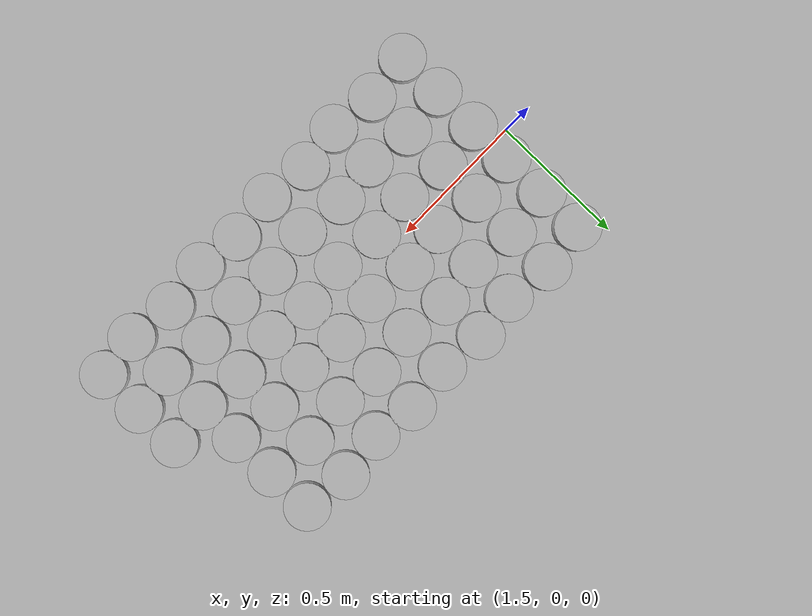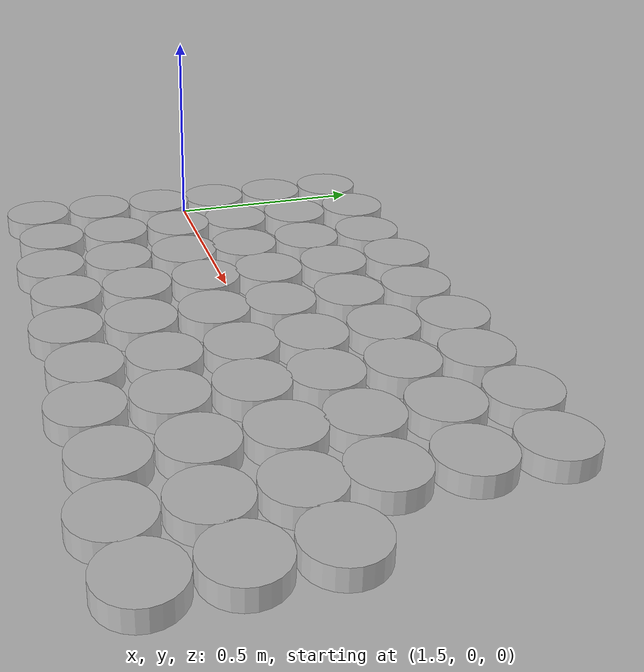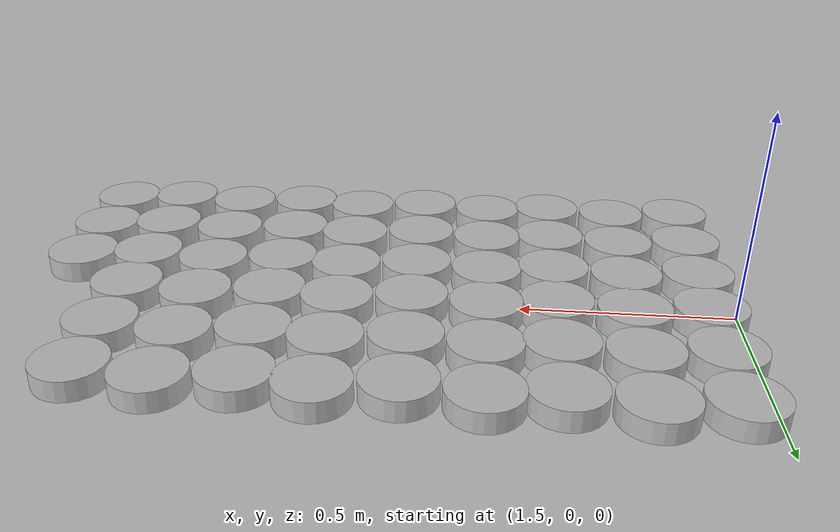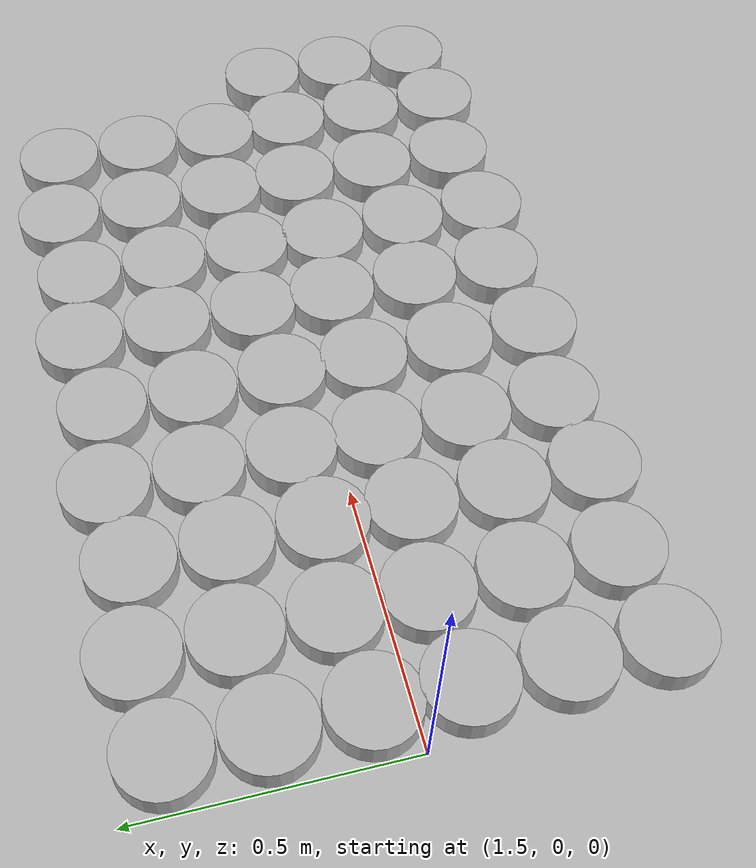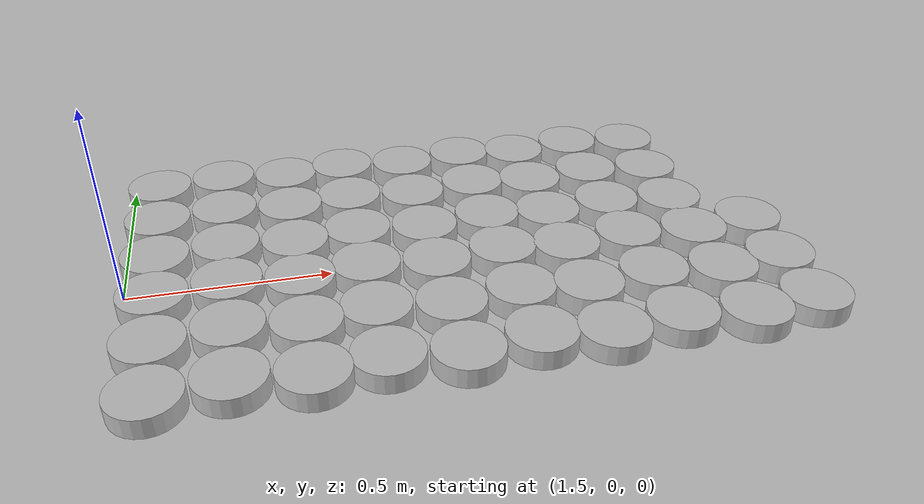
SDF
<sdf version="1.6">
 <world name="default">
  <model name="brick_plane">
   <static>1</static>
   <link name="link">
    <collision name="collision">
     <geometry><plane><normal>0 0 1</normal><size>100 100</size></plane></geometry>
     <surface><friction><ode><mu>100</mu><mu2>50</mu2></ode></friction></surface>
    </collision>
    <visual name="visual">
     <cast_shadows>0</cast_shadows>
     <pose>0 0 -0.04 0 -0 0</pose>
     <geometry><mesh><uri>model://brick_plane/meshes/BrickRoad.dae</uri></mesh></geometry>
    </visual>
   </link>
   <pose>-0.145559 -0.040486 0 0 -0 0</pose>
  </model>
  <model name="SnowPuck-0-0-0">
   <pose>1.58 -0.43 0.05  0 0 0</pose>
   <link name="link">
    <inertial>
     <mass>0.01</mass>
     <inertia><ixx>0.145833</ixx><ixy>0</ixy><ixz>0</ixz><iyy>0.145833</iyy><iyz>0</iyz><izz>0.125</izz></inertia>
    </inertial>
    <collision name="collision">
     <geometry><cylinder><radius>.05</radius><length>0.04</length></cylinder></geometry>
    </collision>
    <visual name="visual">
     <geometry><cylinder><radius>.083333</radius><length>0.05</length></cylinder></geometry>
    </visual>
   </link>
  </model>
  <model name="SnowPuck-0-1-0">
   <pose>1.58 -0.26 0.05  0 0 0</pose>
   <link name="link">
    <inertial>
     <mass>0.01</mass>
     <inertia><ixx>0.145833</ixx><ixy>0</ixy><ixz>0</ixz><iyy>0.145833</iyy><iyz>0</iyz><izz>0.125</izz></inertia>
    </inertial>
    <collision name="collision">
     <geometry><cylinder><radius>.05</radius><length>0.04</length></cylinder></geometry>
    </collision>
    <visual name="visual">
     <geometry><cylinder><radius>.083333</radius><length>0.05</length></cylinder></geometry>
    </visual>
   </link>
  </model>
  <model name="SnowPuck-0-2-0">
   <pose>1.58 -0.09 0.05  0 0 0</pose>
   <link name="link">
    <inertial>
     <mass>0.01</mass>
     <inertia><ixx>0.145833</ixx><ixy>0</ixy><ixz>0</ixz><iyy>0.145833</iyy><iyz>0</iyz><izz>0.125</izz></inertia>
    </inertial>
    <collision name="collision">
     <geometry><cylinder><radius>.05</radius><length>0.04</length></cylinder></geometry>
    </collision>
    <visual name="visual">
     <geometry><cylinder><radius>.083333</radius><length>0.05</length></cylinder></geometry>
    </visual>
   </link>
  </model>
  <model name="SnowPuck-0-3-0">
   <pose>1.58 0.07 0.05  0 0 0</pose>
   <link name="link">
    <inertial>
     <mass>0.01</mass>
     <inertia><ixx>0.145833</ixx><ixy>0</ixy><ixz>0</ixz><iyy>0.145833</iyy><iyz>0</iyz><izz>0.125</izz></inertia>
    </inertial>
    <collision name="collision">
     <geometry><cylinder><radius>.05</radius><length>0.04</length></cylinder></geometry>
    </collision>
    <visual name="visual">
     <geometry><cylinder><radius>.083333</radius><length>0.05</length></cylinder></geometry>
    </visual>
   </link>
  </model>
  <model name="SnowPuck-0-4-0">
   <pose>1.58 0.24 0.05  0 0 0</pose>
   <link name="link">
    <inertial>
     <mass>0.01</mass>
     <inertia><ixx>0.145833</ixx><ixy>0</ixy><ixz>0</ixz><iyy>0.145833</iyy><iyz>0</iyz><izz>0.125</izz></inertia>
    </inertial>
    <collision name="collision">
     <geometry><cylinder><radius>.05</radius><length>0.04</length></cylinder></geometry>
    </collision>
    <visual name="visual">
     <geometry><cylinder><radius>.083333</radius><length>0.05</length></cylinder></geometry>
    </visual>
   </link>
  </model>
  <model name="SnowPuck-0-5-0">
   <pose>1.58 0.41 0.05  0 0 0</pose>
   <link name="link">
    <inertial>
     <mass>0.01</mass>
     <inertia><ixx>0.145833</ixx><ixy>0</ixy><ixz>0</ixz><iyy>0.145833</iyy><iyz>0</iyz><izz>0.125</izz></inertia>
    </inertial>
    <collision name="collision">
     <geometry><cylinder><radius>.05</radius><length>0.04</length></cylinder></geometry>
    </collision>
    <visual name="visual">
     <geometry><cylinder><radius>.083333</radius><length>0.05</length></cylinder></geometry>
    </visual>
   </link>
  </model>
  <model name="SnowPuck-1-0-0">
   <pose>1.75 -0.41 0.05  0 0 0</pose>
   <link name="link">
    <inertial>
     <mass>0.01</mass>
     <inertia><ixx>0.145833</ixx><ixy>0</ixy><ixz>0</ixz><iyy>0.145833</iyy><iyz>0</iyz><izz>0.125</izz></inertia>
    </inertial>
    <collision name="collision">
     <geometry><cylinder><radius>.05</radius><length>0.04</length></cylinder></geometry>
    </collision>
    <visual name="visual">
     <geometry><cylinder><radius>.083333</radius><length>0.05</length></cylinder></geometry>
    </visual>
   </link>
  </model>
  <model name="SnowPuck-1-1-0">
   <pose>1.75 -0.24 0.05  0 0 0</pose>
   <link name="link">
    <inertial>
     <mass>0.01</mass>
     <inertia><ixx>0.145833</ixx><ixy>0</ixy><ixz>0</ixz><iyy>0.145833</iyy><iyz>0</iyz><izz>0.125</izz></inertia>
    </inertial>
    <collision name="collision">
     <geometry><cylinder><radius>.05</radius><length>0.04</length></cylinder></geometry>
    </collision>
    <visual name="visual">
     <geometry><cylinder><radius>.083333</radius><length>0.05</length></cylinder></geometry>
    </visual>
   </link>
  </model>
  <model name="SnowPuck-1-2-0">
   <pose>1.75 -0.07 0.05  0 0 0</pose>
   <link name="link">
    <inertial>
     <mass>0.01</mass>
     <inertia><ixx>0.145833</ixx><ixy>0</ixy><ixz>0</ixz><iyy>0.145833</iyy><iyz>0</iyz><izz>0.125</izz></inertia>
    </inertial>
    <collision name="collision">
     <geometry><cylinder><radius>.05</radius><length>0.04</length></cylinder></geometry>
    </collision>
    <visual name="visual">
     <geometry><cylinder><radius>.083333</radius><length>0.05</length></cylinder></geometry>
    </visual>
   </link>
  </model>
  <model name="SnowPuck-1-3-0">
   <pose>1.75 0.09 0.05  0 0 0</pose>
   <link name="link">
    <inertial>
     <mass>0.01</mass>
     <inertia><ixx>0.145833</ixx><ixy>0</ixy><ixz>0</ixz><iyy>0.145833</iyy><iyz>0</iyz><izz>0.125</izz></inertia>
    </inertial>
    <collision name="collision">
     <geometry><cylinder><radius>.05</radius><length>0.04</length></cylinder></geometry>
    </collision>
    <visual name="visual">
     <geometry><cylinder><radius>.083333</radius><length>0.05</length></cylinder></geometry>
    </visual>
   </link>
  </model>
  <model name="SnowPuck-1-4-0">
   <pose>1.75 0.26 0.05  0 0 0</pose>
   <link name="link">
    <inertial>
     <mass>0.01</mass>
     <inertia><ixx>0.145833</ixx><ixy>0</ixy><ixz>0</ixz><iyy>0.145833</iyy><iyz>0</iyz><izz>0.125</izz></inertia>
    </inertial>
    <collision name="collision">
     <geometry><cylinder><radius>.05</radius><length>0.04</length></cylinder></geometry>
    </collision>
    <visual name="visual">
     <geometry><cylinder><radius>.083333</radius><length>0.05</length></cylinder></geometry>
    </visual>
   </link>
  </model>
  <model name="SnowPuck-1-5-0">
   <pose>1.75 0.43 0.05  0 0 0</pose>
   <link name="link">
    <inertial>
     <mass>0.01</mass>
     <inertia><ixx>0.145833</ixx><ixy>0</ixy><ixz>0</ixz><iyy>0.145833</iyy><iyz>0</iyz><izz>0.125</izz></inertia>
    </inertial>
    <collision name="collision">
     <geometry><cylinder><radius>.05</radius><length>0.04</length></cylinder></geometry>
    </collision>
    <visual name="visual">
     <geometry><cylinder><radius>.083333</radius><length>0.05</length></cylinder></geometry>
    </visual>
   </link>
  </model>
  <model name="SnowPuck-2-0-0">
   <pose>1.92 -0.43 0.05  0 0 0</pose>
   <link name="link">
    <inertial>
     <mass>0.01</mass>
     <inertia><ixx>0.145833</ixx><ixy>0</ixy><ixz>0</ixz><iyy>0.145833</iyy><iyz>0</iyz><izz>0.125</izz></inertia>
    </inertial>
    <collision name="collision">
     <geometry><cylinder><radius>.05</radius><length>0.04</length></cylinder></geometry>
    </collision>
    <visual name="visual">
     <geometry><cylinder><radius>.083333</radius><length>0.05</length></cylinder></geometry>
    </visual>
   </link>
  </model>
  <model name="SnowPuck-2-1-0">
   <pose>1.92 -0.26 0.05  0 0 0</pose>
   <link name="link">
    <inertial>
     <mass>0.01</mass>
     <inertia><ixx>0.145833</ixx><ixy>0</ixy><ixz>0</ixz><iyy>0.145833</iyy><iyz>0</iyz><izz>0.125</izz></inertia>
    </inertial>
    <collision name="collision">
     <geometry><cylinder><radius>.05</radius><length>0.04</length></cylinder></geometry>
    </collision>
    <visual name="visual">
     <geometry><cylinder><radius>.083333</radius><length>0.05</length></cylinder></geometry>
    </visual>
   </link>
  </model>
  <model name="SnowPuck-2-2-0">
   <pose>1.92 -0.09 0.05  0 0 0</pose>
   <link name="link">
    <inertial>
     <mass>0.01</mass>
     <inertia><ixx>0.145833</ixx><ixy>0</ixy><ixz>0</ixz><iyy>0.145833</iyy><iyz>0</iyz><izz>0.125</izz></inertia>
    </inertial>
    <collision name="collision">
     <geometry><cylinder><radius>.05</radius><length>0.04</length></cylinder></geometry>
    </collision>
    <visual name="visual">
     <geometry><cylinder><radius>.083333</radius><length>0.05</length></cylinder></geometry>
    </visual>
   </link>
  </model>
  <model name="SnowPuck-2-3-0">
   <pose>1.92 0.07 0.05  0 0 0</pose>
   <link name="link">
    <inertial>
     <mass>0.01</mass>
     <inertia><ixx>0.145833</ixx><ixy>0</ixy><ixz>0</ixz><iyy>0.145833</iyy><iyz>0</iyz><izz>0.125</izz></inertia>
    </inertial>
    <collision name="collision">
     <geometry><cylinder><radius>.05</radius><length>0.04</length></cylinder></geometry>
    </collision>
    <visual name="visual">
     <geometry><cylinder><radius>.083333</radius><length>0.05</length></cylinder></geometry>
    </visual>
   </link>
  </model>
  <model name="SnowPuck-2-4-0">
   <pose>1.92 0.24 0.05  0 0 0</pose>
   <link name="link">
    <inertial>
     <mass>0.01</mass>
     <inertia><ixx>0.145833</ixx><ixy>0</ixy><ixz>0</ixz><iyy>0.145833</iyy><iyz>0</iyz><izz>0.125</izz></inertia>
    </inertial>
    <collision name="collision">
     <geometry><cylinder><radius>.05</radius><length>0.04</length></cylinder></geometry>
    </collision>
    <visual name="visual">
     <geometry><cylinder><radius>.083333</radius><length>0.05</length></cylinder></geometry>
    </visual>
   </link>
  </model>
  <model name="SnowPuck-2-5-0">
   <pose>1.92 0.41 0.05  0 0 0</pose>
   <link name="link">
    <inertial>
     <mass>0.01</mass>
     <inertia><ixx>0.145833</ixx><ixy>0</ixy><ixz>0</ixz><iyy>0.145833</iyy><iyz>0</iyz><izz>0.125</izz></inertia>
    </inertial>
    <collision name="collision">
     <geometry><cylinder><radius>.05</radius><length>0.04</length></cylinder></geometry>
    </collision>
    <visual name="visual">
     <geometry><cylinder><radius>.083333</radius><length>0.05</length></cylinder></geometry>
    </visual>
   </link>
  </model>
  <model name="SnowPuck-3-0-0">
   <pose>2.08 -0.41 0.05  0 0 0</pose>
   <link name="link">
    <inertial>
     <mass>0.01</mass>
     <inertia><ixx>0.145833</ixx><ixy>0</ixy><ixz>0</ixz><iyy>0.145833</iyy><iyz>0</iyz><izz>0.125</izz></inertia>
    </inertial>
    <collision name="collision">
     <geometry><cylinder><radius>.05</radius><length>0.04</length></cylinder></geometry>
    </collision>
    <visual name="visual">
     <geometry><cylinder><radius>.083333</radius><length>0.05</length></cylinder></geometry>
    </visual>
   </link>
  </model>
  <model name="SnowPuck-3-1-0">
   <pose>2.08 -0.24 0.05  0 0 0</pose>
   <link name="link">
    <inertial>
     <mass>0.01</mass>
     <inertia><ixx>0.145833</ixx><ixy>0</ixy><ixz>0</ixz><iyy>0.145833</iyy><iyz>0</iyz><izz>0.125</izz></inertia>
    </inertial>
    <collision name="collision">
     <geometry><cylinder><radius>.05</radius><length>0.04</length></cylinder></geometry>
    </collision>
    <visual name="visual">
     <geometry><cylinder><radius>.083333</radius><length>0.05</length></cylinder></geometry>
    </visual>
   </link>
  </model>
  <model name="SnowPuck-3-2-0">
   <pose>2.08 -0.07 0.05  0 0 0</pose>
   <link name="link">
    <inertial>
     <mass>0.01</mass>
     <inertia><ixx>0.145833</ixx><ixy>0</ixy><ixz>0</ixz><iyy>0.145833</iyy><iyz>0</iyz><izz>0.125</izz></inertia>
    </inertial>
    <collision name="collision">
     <geometry><cylinder><radius>.05</radius><length>0.04</length></cylinder></geometry>
    </collision>
    <visual name="visual">
     <geometry><cylinder><radius>.083333</radius><length>0.05</length></cylinder></geometry>
    </visual>
   </link>
  </model>
  <model name="SnowPuck-3-3-0">
   <pose>2.08 0.09 0.05  0 0 0</pose>
   <link name="link">
    <inertial>
     <mass>0.01</mass>
     <inertia><ixx>0.145833</ixx><ixy>0</ixy><ixz>0</ixz><iyy>0.145833</iyy><iyz>0</iyz><izz>0.125</izz></inertia>
    </inertial>
    <collision name="collision">
     <geometry><cylinder><radius>.05</radius><length>0.04</length></cylinder></geometry>
    </collision>
    <visual name="visual">
     <geometry><cylinder><radius>.083333</radius><length>0.05</length></cylinder></geometry>
    </visual>
   </link>
  </model>
  <model name="SnowPuck-3-4-0">
   <pose>2.08 0.26 0.05  0 0 0</pose>
   <link name="link">
    <inertial>
     <mass>0.01</mass>
     <inertia><ixx>0.145833</ixx><ixy>0</ixy><ixz>0</ixz><iyy>0.145833</iyy><iyz>0</iyz><izz>0.125</izz></inertia>
    </inertial>
    <collision name="collision">
     <geometry><cylinder><radius>.05</radius><length>0.04</length></cylinder></geometry>
    </collision>
    <visual name="visual">
     <geometry><cylinder><radius>.083333</radius><length>0.05</length></cylinder></geometry>
    </visual>
   </link>
  </model>
  <model name="SnowPuck-3-5-0">
   <pose>2.08 0.43 0.05  0 0 0</pose>
   <link name="link">
    <inertial>
     <mass>0.01</mass>
     <inertia><ixx>0.145833</ixx><ixy>0</ixy><ixz>0</ixz><iyy>0.145833</iyy><iyz>0</iyz><izz>0.125</izz></inertia>
    </inertial>
    <collision name="collision">
     <geometry><cylinder><radius>.05</radius><length>0.04</length></cylinder></geometry>
    </collision>
    <visual name="visual">
     <geometry><cylinder><radius>.083333</radius><length>0.05</length></cylinder></geometry>
    </visual>
   </link>
  </model>
  <model name="SnowPuck-4-0-0">
   <pose>2.25 -0.43 0.05  0 0 0</pose>
   <link name="link">
    <inertial>
     <mass>0.01</mass>
     <inertia><ixx>0.145833</ixx><ixy>0</ixy><ixz>0</ixz><iyy>0.145833</iyy><iyz>0</iyz><izz>0.125</izz></inertia>
    </inertial>
    <collision name="collision">
     <geometry><cylinder><radius>.05</radius><length>0.04</length></cylinder></geometry>
    </collision>
    <visual name="visual">
     <geometry><cylinder><radius>.083333</radius><length>0.05</length></cylinder></geometry>
    </visual>
   </link>
  </model>
  <model name="SnowPuck-4-1-0">
   <pose>2.25 -0.26 0.05  0 0 0</pose>
   <link name="link">
    <inertial>
     <mass>0.01</mass>
     <inertia><ixx>0.145833</ixx><ixy>0</ixy><ixz>0</ixz><iyy>0.145833</iyy><iyz>0</iyz><izz>0.125</izz></inertia>
    </inertial>
    <collision name="collision">
     <geometry><cylinder><radius>.05</radius><length>0.04</length></cylinder></geometry>
    </collision>
    <visual name="visual">
     <geometry><cylinder><radius>.083333</radius><length>0.05</length></cylinder></geometry>
    </visual>
   </link>
  </model>
  <model name="SnowPuck-4-2-0">
   <pose>2.25 -0.09 0.05  0 0 0</pose>
   <link name="link">
    <inertial>
     <mass>0.01</mass>
     <inertia><ixx>0.145833</ixx><ixy>0</ixy><ixz>0</ixz><iyy>0.145833</iyy><iyz>0</iyz><izz>0.125</izz></inertia>
    </inertial>
    <collision name="collision">
     <geometry><cylinder><radius>.05</radius><length>0.04</length></cylinder></geometry>
    </collision>
    <visual name="visual">
     <geometry><cylinder><radius>.083333</radius><length>0.05</length></cylinder></geometry>
    </visual>
   </link>
  </model>
  <model name="SnowPuck-4-3-0">
   <pose>2.25 0.07 0.05  0 0 0</pose>
   <link name="link">
    <inertial>
     <mass>0.01</mass>
     <inertia><ixx>0.145833</ixx><ixy>0</ixy><ixz>0</ixz><iyy>0.145833</iyy><iyz>0</iyz><izz>0.125</izz></inertia>
    </inertial>
    <collision name="collision">
     <geometry><cylinder><radius>.05</radius><length>0.04</length></cylinder></geometry>
    </collision>
    <visual name="visual">
     <geometry><cylinder><radius>.083333</radius><length>0.05</length></cylinder></geometry>
    </visual>
   </link>
  </model>
  <model name="SnowPuck-4-4-0">
   <pose>2.25 0.24 0.05  0 0 0</pose>
   <link name="link">
    <inertial>
     <mass>0.01</mass>
     <inertia><ixx>0.145833</ixx><ixy>0</ixy><ixz>0</ixz><iyy>0.145833</iyy><iyz>0</iyz><izz>0.125</izz></inertia>
    </inertial>
    <collision name="collision">
     <geometry><cylinder><radius>.05</radius><length>0.04</length></cylinder></geometry>
    </collision>
    <visual name="visual">
     <geometry><cylinder><radius>.083333</radius><length>0.05</length></cylinder></geometry>
    </visual>
   </link>
  </model>
  <model name="SnowPuck-4-5-0">
   <pose>2.25 0.41 0.05  0 0 0</pose>
   <link name="link">
    <inertial>
     <mass>0.01</mass>
     <inertia><ixx>0.145833</ixx><ixy>0</ixy><ixz>0</ixz><iyy>0.145833</iyy><iyz>0</iyz><izz>0.125</izz></inertia>
    </inertial>
    <collision name="collision">
     <geometry><cylinder><radius>.05</radius><length>0.04</length></cylinder></geometry>
    </collision>
    <visual name="visual">
     <geometry><cylinder><radius>.083333</radius><length>0.05</length></cylinder></geometry>
    </visual>
   </link>
  </model>
  <model name="SnowPuck-5-0-0">
   <pose>2.42 -0.41 0.05  0 0 0</pose>
   <link name="link">
    <inertial>
     <mass>0.01</mass>
     <inertia><ixx>0.145833</ixx><ixy>0</ixy><ixz>0</ixz><iyy>0.145833</iyy><iyz>0</iyz><izz>0.125</izz></inertia>
    </inertial>
    <collision name="collision">
     <geometry><cylinder><radius>.05</radius><length>0.04</length></cylinder></geometry>
    </collision>
    <visual name="visual">
     <geometry><cylinder><radius>.083333</radius><length>0.05</length></cylinder></geometry>
    </visual>
   </link>
  </model>
  <model name="SnowPuck-5-1-0">
   <pose>2.42 -0.24 0.05  0 0 0</pose>
   <link name="link">
    <inertial>
     <mass>0.01</mass>
     <inertia><ixx>0.145833</ixx><ixy>0</ixy><ixz>0</ixz><iyy>0.145833</iyy><iyz>0</iyz><izz>0.125</izz></inertia>
    </inertial>
    <collision name="collision">
     <geometry><cylinder><radius>.05</radius><length>0.04</length></cylinder></geometry>
    </collision>
    <visual name="visual">
     <geometry><cylinder><radius>.083333</radius><length>0.05</length></cylinder></geometry>
    </visual>
   </link>
  </model>
  <model name="SnowPuck-5-2-0">
   <pose>2.42 -0.07 0.05  0 0 0</pose>
   <link name="link">
    <inertial>
     <mass>0.01</mass>
     <inertia><ixx>0.145833</ixx><ixy>0</ixy><ixz>0</ixz><iyy>0.145833</iyy><iyz>0</iyz><izz>0.125</izz></inertia>
    </inertial>
    <collision name="collision">
     <geometry><cylinder><radius>.05</radius><length>0.04</length></cylinder></geometry>
    </collision>
    <visual name="visual">
     <geometry><cylinder><radius>.083333</radius><length>0.05</length></cylinder></geometry>
    </visual>
   </link>
  </model>
  <model name="SnowPuck-5-3-0">
   <pose>2.42 0.09 0.05  0 0 0</pose>
   <link name="link">
    <inertial>
     <mass>0.01</mass>
     <inertia><ixx>0.145833</ixx><ixy>0</ixy><ixz>0</ixz><iyy>0.145833</iyy><iyz>0</iyz><izz>0.125</izz></inertia>
    </inertial>
    <collision name="collision">
     <geometry><cylinder><radius>.05</radius><length>0.04</length></cylinder></geometry>
    </collision>
    <visual name="visual">
     <geometry><cylinder><radius>.083333</radius><length>0.05</length></cylinder></geometry>
    </visual>
   </link>
  </model>
  <model name="SnowPuck-5-4-0">
   <pose>2.42 0.26 0.05  0 0 0</pose>
   <link name="link">
    <inertial>
     <mass>0.01</mass>
     <inertia><ixx>0.145833</ixx><ixy>0</ixy><ixz>0</ixz><iyy>0.145833</iyy><iyz>0</iyz><izz>0.125</izz></inertia>
    </inertial>
    <collision name="collision">
     <geometry><cylinder><radius>.05</radius><length>0.04</length></cylinder></geometry>
    </collision>
    <visual name="visual">
     <geometry><cylinder><radius>.083333</radius><length>0.05</length></cylinder></geometry>
    </visual>
   </link>
  </model>
  <model name="SnowPuck-5-5-0">
   <pose>2.42 0.43 0.05  0 0 0</pose>
   <link name="link">
    <inertial>
     <mass>0.01</mass>
     <inertia><ixx>0.145833</ixx><ixy>0</ixy><ixz>0</ixz><iyy>0.145833</iyy><iyz>0</iyz><izz>0.125</izz></inertia>
    </inertial>
    <collision name="collision">
     <geometry><cylinder><radius>.05</radius><length>0.04</length></cylinder></geometry>
    </collision>
    <visual name="visual">
     <geometry><cylinder><radius>.083333</radius><length>0.05</length></cylinder></geometry>
    </visual>
   </link>
  </model>
  <model name="SnowPuck-6-0-0">
   <pose>2.58 -0.43 0.05  0 0 0</pose>
   <link name="link">
    <inertial>
     <mass>0.01</mass>
     <inertia><ixx>0.145833</ixx><ixy>0</ixy><ixz>0</ixz><iyy>0.145833</iyy><iyz>0</iyz><izz>0.125</izz></inertia>
    </inertial>
    <collision name="collision">
     <geometry><cylinder><radius>.05</radius><length>0.04</length></cylinder></geometry>
    </collision>
    <visual name="visual">
     <geometry><cylinder><radius>.083333</radius><length>0.05</length></cylinder></geometry>
    </visual>
   </link>
  </model>
  <model name="SnowPuck-6-1-0">
   <pose>2.58 -0.26 0.05  0 0 0</pose>
   <link name="link">
    <inertial>
     <mass>0.01</mass>
     <inertia><ixx>0.145833</ixx><ixy>0</ixy><ixz>0</ixz><iyy>0.145833</iyy><iyz>0</iyz><izz>0.125</izz></inertia>
    </inertial>
    <collision name="collision">
     <geometry><cylinder><radius>.05</radius><length>0.04</length></cylinder></geometry>
    </collision>
    <visual name="visual">
     <geometry><cylinder><radius>.083333</radius><length>0.05</length></cylinder></geometry>
    </visual>
   </link>
  </model>
  <model name="SnowPuck-6-2-0">
   <pose>2.58 -0.09 0.05  0 0 0</pose>
   <link name="link">
    <inertial>
     <mass>0.01</mass>
     <inertia><ixx>0.145833</ixx><ixy>0</ixy><ixz>0</ixz><iyy>0.145833</iyy><iyz>0</iyz><izz>0.125</izz></inertia>
    </inertial>
    <collision name="collision">
     <geometry><cylinder><radius>.05</radius><length>0.04</length></cylinder></geometry>
    </collision>
    <visual name="visual">
     <geometry><cylinder><radius>.083333</radius><length>0.05</length></cylinder></geometry>
    </visual>
   </link>
  </model>
  <model name="SnowPuck-6-3-0">
   <pose>2.58 0.07 0.05  0 0 0</pose>
   <link name="link">
    <inertial>
     <mass>0.01</mass>
     <inertia><ixx>0.145833</ixx><ixy>0</ixy><ixz>0</ixz><iyy>0.145833</iyy><iyz>0</iyz><izz>0.125</izz></inertia>
    </inertial>
    <collision name="collision">
     <geometry><cylinder><radius>.05</radius><length>0.04</length></cylinder></geometry>
    </collision>
    <visual name="visual">
     <geometry><cylinder><radius>.083333</radius><length>0.05</length></cylinder></geometry>
    </visual>
   </link>
  </model>
  <model name="SnowPuck-6-4-0">
   <pose>2.58 0.24 0.05  0 0 0</pose>
   <link name="link">
    <inertial>
     <mass>0.01</mass>
     <inertia><ixx>0.145833</ixx><ixy>0</ixy><ixz>0</ixz><iyy>0.145833</iyy><iyz>0</iyz><izz>0.125</izz></inertia>
    </inertial>
    <collision name="collision">
     <geometry><cylinder><radius>.05</radius><length>0.04</length></cylinder></geometry>
    </collision>
    <visual name="visual">
     <geometry><cylinder><radius>.083333</radius><length>0.05</length></cylinder></geometry>
    </visual>
   </link>
  </model>
  <model name="SnowPuck-6-5-0">
   <pose>2.58 0.41 0.05  0 0 0</pose>
   <link name="link">
    <inertial>
     <mass>0.01</mass>
     <inertia><ixx>0.145833</ixx><ixy>0</ixy><ixz>0</ixz><iyy>0.145833</iyy><iyz>0</iyz><izz>0.125</izz></inertia>
    </inertial>
    <collision name="collision">
     <geometry><cylinder><radius>.05</radius><length>0.04</length></cylinder></geometry>
    </collision>
    <visual name="visual">
     <geometry><cylinder><radius>.083333</radius><length>0.05</length></cylinder></geometry>
    </visual>
   </link>
  </model>
  <model name="SnowPuck-7-0-0">
   <pose>2.75 -0.41 0.05  0 0 0</pose>
   <link name="link">
    <inertial>
     <mass>0.01</mass>
     <inertia><ixx>0.145833</ixx><ixy>0</ixy><ixz>0</ixz><iyy>0.145833</iyy><iyz>0</iyz><izz>0.125</izz></inertia>
    </inertial>
    <collision name="collision">
     <geometry><cylinder><radius>.05</radius><length>0.04</length></cylinder></geometry>
    </collision>
    <visual name="visual">
     <geometry><cylinder><radius>.083333</radius><length>0.05</length></cylinder></geometry>
    </visual>
   </link>
  </model>
  <model name="SnowPuck-7-1-0">
   <pose>2.75 -0.24 0.05  0 0 0</pose>
   <link name="link">
    <inertial>
     <mass>0.01</mass>
     <inertia><ixx>0.145833</ixx><ixy>0</ixy><ixz>0</ixz><iyy>0.145833</iyy><iyz>0</iyz><izz>0.125</izz></inertia>
    </inertial>
    <collision name="collision">
     <geometry><cylinder><radius>.05</radius><length>0.04</length></cylinder></geometry>
    </collision>
    <visual name="visual">
     <geometry><cylinder><radius>.083333</radius><length>0.05</length></cylinder></geometry>
    </visual>
   </link>
  </model>
  <model name="SnowPuck-7-2-0">
   <pose>2.75 -0.07 0.05  0 0 0</pose>
   <link name="link">
    <inertial>
     <mass>0.01</mass>
     <inertia><ixx>0.145833</ixx><ixy>0</ixy><ixz>0</ixz><iyy>0.145833</iyy><iyz>0</iyz><izz>0.125</izz></inertia>
    </inertial>
    <collision name="collision">
     <geometry><cylinder><radius>.05</radius><length>0.04</length></cylinder></geometry>
    </collision>
    <visual name="visual">
     <geometry><cylinder><radius>.083333</radius><length>0.05</length></cylinder></geometry>
    </visual>
   </link>
  </model>
  <model name="SnowPuck-7-3-0">
   <pose>2.75 0.09 0.05  0 0 0</pose>
   <link name="link">
    <inertial>
     <mass>0.01</mass>
     <inertia><ixx>0.145833</ixx><ixy>0</ixy><ixz>0</ixz><iyy>0.145833</iyy><iyz>0</iyz><izz>0.125</izz></inertia>
    </inertial>
    <collision name="collision">
     <geometry><cylinder><radius>.05</radius><length>0.04</length></cylinder></geometry>
    </collision>
    <visual name="visual">
     <geometry><cylinder><radius>.083333</radius><length>0.05</length></cylinder></geometry>
    </visual>
   </link>
  </model>
  <model name="SnowPuck-7-4-0">
   <pose>2.75 0.26 0.05  0 0 0</pose>
   <link name="link">
    <inertial>
     <mass>0.01</mass>
     <inertia><ixx>0.145833</ixx><ixy>0</ixy><ixz>0</ixz><iyy>0.145833</iyy><iyz>0</iyz><izz>0.125</izz></inertia>
    </inertial>
    <collision name="collision">
     <geometry><cylinder><radius>.05</radius><length>0.04</length></cylinder></geometry>
    </collision>
    <visual name="visual">
     <geometry><cylinder><radius>.083333</radius><length>0.05</length></cylinder></geometry>
    </visual>
   </link>
  </model>
  <model name="SnowPuck-7-5-0">
   <pose>2.75 0.43 0.05  0 0 0</pose>
   <link name="link">
    <inertial>
     <mass>0.01</mass>
     <inertia><ixx>0.145833</ixx><ixy>0</ixy><ixz>0</ixz><iyy>0.145833</iyy><iyz>0</iyz><izz>0.125</izz></inertia>
    </inertial>
    <collision name="collision">
     <geometry><cylinder><radius>.05</radius><length>0.04</length></cylinder></geometry>
    </collision>
    <visual name="visual">
     <geometry><cylinder><radius>.083333</radius><length>0.05</length></cylinder></geometry>
    </visual>
   </link>
  </model>
  <model name="SnowPuck-8-0-0">
   <pose>2.92 -0.43 0.05  0 0 0</pose>
   <link name="link">
    <inertial>
     <mass>0.01</mass>
     <inertia><ixx>0.145833</ixx><ixy>0</ixy><ixz>0</ixz><iyy>0.145833</iyy><iyz>0</iyz><izz>0.125</izz></inertia>
    </inertial>
    <collision name="collision">
     <geometry><cylinder><radius>.05</radius><length>0.04</length></cylinder></geometry>
    </collision>
    <visual name="visual">
     <geometry><cylinder><radius>.083333</radius><length>0.05</length></cylinder></geometry>
    </visual>
   </link>
  </model>
  <model name="SnowPuck-8-1-0">
   <pose>2.92 -0.26 0.05  0 0 0</pose>
   <link name="link">
    <inertial>
     <mass>0.01</mass>
     <inertia><ixx>0.145833</ixx><ixy>0</ixy><ixz>0</ixz><iyy>0.145833</iyy><iyz>0</iyz><izz>0.125</izz></inertia>
    </inertial>
    <collision name="collision">
     <geometry><cylinder><radius>.05</radius><length>0.04</length></cylinder></geometry>
    </collision>
    <visual name="visual">
     <geometry><cylinder><radius>.083333</radius><length>0.05</length></cylinder></geometry>
    </visual>
   </link>
  </model>
  <model name="SnowPuck-8-2-0">
   <pose>2.92 -0.09 0.05  0 0 0</pose>
   <link name="link">
    <inertial>
     <mass>0.01</mass>
     <inertia><ixx>0.145833</ixx><ixy>0</ixy><ixz>0</ixz><iyy>0.145833</iyy><iyz>0</iyz><izz>0.125</izz></inertia>
    </inertial>
    <collision name="collision">
     <geometry><cylinder><radius>.05</radius><length>0.04</length></cylinder></geometry>
    </collision>
    <visual name="visual">
     <geometry><cylinder><radius>.083333</radius><length>0.05</length></cylinder></geometry>
    </visual>
   </link>
  </model>
  <model name="SnowPuck-8-3-0">
   <pose>2.92 0.07 0.05  0 0 0</pose>
   <link name="link">
    <inertial>
     <mass>0.01</mass>
     <inertia><ixx>0.145833</ixx><ixy>0</ixy><ixz>0</ixz><iyy>0.145833</iyy><iyz>0</iyz><izz>0.125</izz></inertia>
    </inertial>
    <collision name="collision">
     <geometry><cylinder><radius>.05</radius><length>0.04</length></cylinder></geometry>
    </collision>
    <visual name="visual">
     <geometry><cylinder><radius>.083333</radius><length>0.05</length></cylinder></geometry>
    </visual>
   </link>
  </model>
  <model name="SnowPuck-8-4-0">
   <pose>2.92 0.24 0.05  0 0 0</pose>
   <link name="link">
    <inertial>
     <mass>0.01</mass>
     <inertia><ixx>0.145833</ixx><ixy>0</ixy><ixz>0</ixz><iyy>0.145833</iyy><iyz>0</iyz><izz>0.125</izz></inertia>
    </inertial>
    <collision name="collision">
     <geometry><cylinder><radius>.05</radius><length>0.04</length></cylinder></geometry>
    </collision>
    <visual name="visual">
     <geometry><cylinder><radius>.083333</radius><length>0.05</length></cylinder></geometry>
    </visual>
   </link>
  </model>
  <model name="SnowPuck-8-5-0">
   <pose>2.92 0.41 0.05  0 0 0</pose>
   <link name="link">
    <inertial>
     <mass>0.01</mass>
     <inertia><ixx>0.145833</ixx><ixy>0</ixy><ixz>0</ixz><iyy>0.145833</iyy><iyz>0</iyz><izz>0.125</izz></inertia>
    </inertial>
    <collision name="collision">
     <geometry><cylinder><radius>.05</radius><length>0.04</length></cylinder></geometry>
    </collision>
    <visual name="visual">
     <geometry><cylinder><radius>.083333</radius><length>0.05</length></cylinder></geometry>
    </visual>
   </link>
  </model>
  <model name="SnowPuck-9-0-0">
   <pose>3.08 -0.41 0.05  0 0 0</pose>
   <link name="link">
    <inertial>
     <mass>0.01</mass>
     <inertia><ixx>0.145833</ixx><ixy>0</ixy><ixz>0</ixz><iyy>0.145833</iyy><iyz>0</iyz><izz>0.125</izz></inertia>
    </inertial>
    <collision name="collision">
     <geometry><cylinder><radius>.05</radius><length>0.04</length></cylinder></geometry>
    </collision>
    <visual name="visual">
     <geometry><cylinder><radius>.083333</radius><length>0.05</length></cylinder></geometry>
    </visual>
   </link>
  </model>
  <model name="SnowPuck-9-1-0">
   <pose>3.08 -0.24 0.05  0 0 0</pose>
   <link name="link">
    <inertial>
     <mass>0.01</mass>
     <inertia><ixx>0.145833</ixx><ixy>0</ixy><ixz>0</ixz><iyy>0.145833</iyy><iyz>0</iyz><izz>0.125</izz></inertia>
    </inertial>
    <collision name="collision">
     <geometry><cylinder><radius>.05</radius><length>0.04</length></cylinder></geometry>
    </collision>
    <visual name="visual">
     <geometry><cylinder><radius>.083333</radius><length>0.05</length></cylinder></geometry>
    </visual>
   </link>
  </model>
  <model name="SnowPuck-9-2-0">
   <pose>3.08 -0.07 0.05  0 0 0</pose>
   <link name="link">
    <inertial>
     <mass>0.01</mass>
     <inertia><ixx>0.145833</ixx><ixy>0</ixy><ixz>0</ixz><iyy>0.145833</iyy><iyz>0</iyz><izz>0.125</izz></inertia>
    </inertial>
    <collision name="collision">
     <geometry><cylinder><radius>.05</radius><length>0.04</length></cylinder></geometry>
    </collision>
    <visual name="visual">
     <geometry><cylinder><radius>.083333</radius><length>0.05</length></cylinder></geometry>
    </visual>
   </link>
  </model>
 </world>
</sdf>
